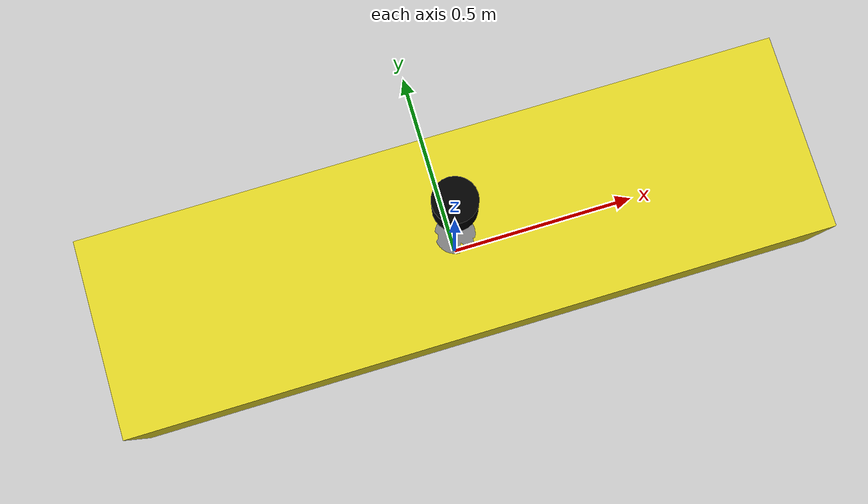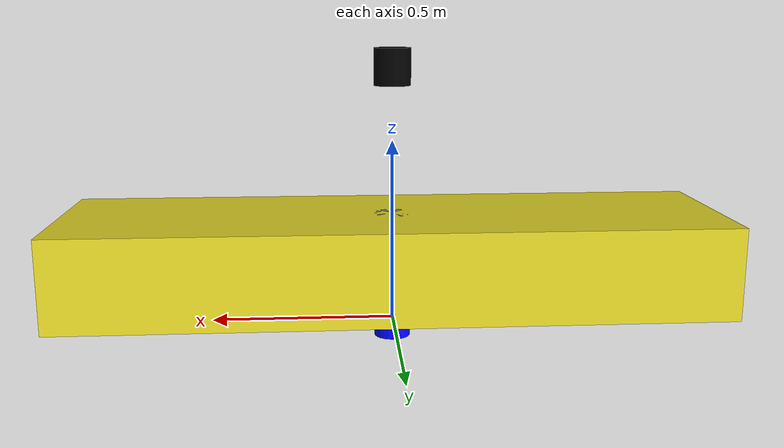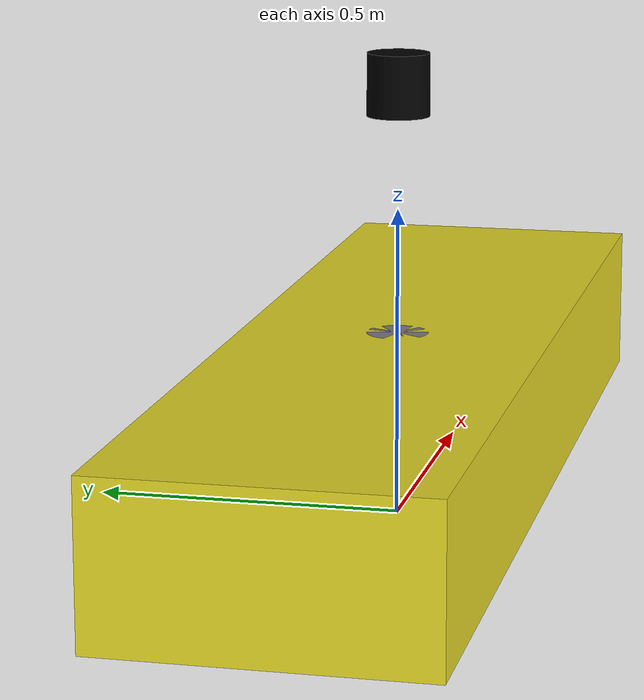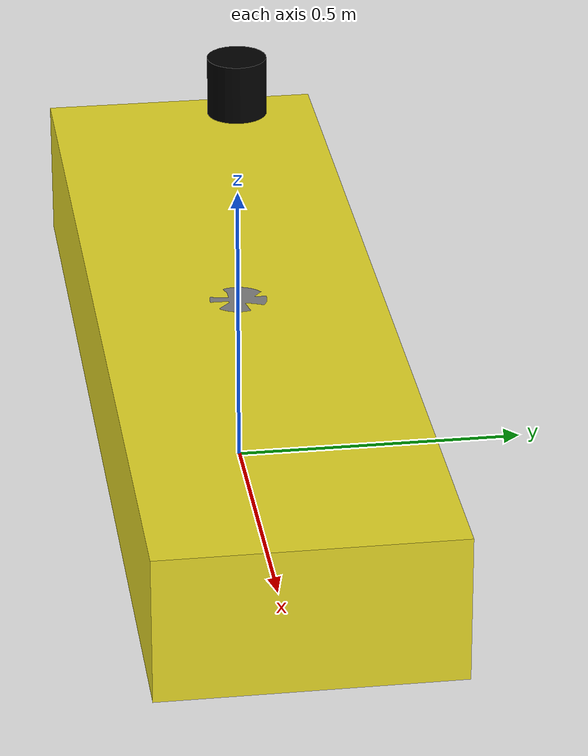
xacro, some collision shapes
<?xml version="1.0"?>
<robot xmlns:xacro="http://ros.org/wiki/xacro" name="myboat">
  <link name="myboat/base_link">
  </link>

  <joint name="myboat/dummy_joint" type="fixed">
    <parent link="myboat/base_link"/>
    <child link="myboat/dummy_link"/>
    <origin xyz="0 0 0.30" rpy="0 0 0"/>
  </joint>

  <link name="myboat/dummy_link">
    <visual>
      <origin xyz="0 0 0" rpy="0 0 0" />
      <geometry>
        <mesh filename="package://myboat_description/meshes/myboat_body.STL"/>
      </geometry>
      <material name="base_material">
        <diffuse>1.0 1.0 1.0</diffuse>
        <specular>1.0 1.0 1.0</specular>
        <pbr>
          <metal>
            <albedo_map>package://myboat_description/models/materials/textures/Boat_Albedo.png</albedo_map>
            <metalness_map>package://myboat_description/models/materials/textures/Boat_Metalness.png</metalness_map>
            <roughness_map>package://myboat_description/models/materials/textures/Boat_Roughness.png</roughness_map>
          </metal>
        </pbr>
        <script>
          <uri>package://myboat_description/models/materials/scripts/</uri>
          <uri>package://myboat_description/models/materials/textures/</uri>
          <name>UrbanTile/Boat_Diffuse</name>
        </script>
      </material>
    </visual>
    <collision name="collision">
      <geometry>
        <box size="1.8 0.5 0.25"/>
      </geometry>
      <origin xyz="0 0 -0.125" rpy="0 0 0"/>
    </collision>
    <inertial>
      <mass value="30.0"/>
      <inertia
        ixx="0.08"
        ixy="0.0"
        ixz="0.0"
        iyy="4.0"
        iyz="0.0"
        izz="4.1" />
    </inertial>
  </link>

  <gazebo reference="myboat/dummy_link">
      <material>Gazebo/Yellow</material>
  </gazebo>

  <link name="zju_link1">
      <visual>
          <origin xyz=" 0 0 0" rpy="0 0 0" />
          <geometry>
              <mesh filename="package://myboat_description/meshes/IMO2-ZJU.STL" scale="1.3 0.8 1.3"/>
          </geometry>
          <material name="whilte" />
      </visual>
  </link>

  <joint name="zju_joint1" type="fixed">
      <origin xyz="0.23 -0.22 -0.13" rpy="0 0 0" />
      <parent link="myboat/dummy_link"/>
      <child link="zju_link1"/>
  </joint>

  <link name="zju_link2">
      <visual>
          <origin xyz=" 0 0 0" rpy="0 0 0" />
          <geometry>
              <mesh filename="package://myboat_description/meshes/IMO2-ZJU.STL" scale="1.3 0.8 1.3"/>
          </geometry>
          <material name="whilte" />
      </visual>
  </link>

  <joint name="zju_joint2" type="fixed">
      <origin xyz="0.23 0.23 -0.13" rpy="0 0 3.14" />
      <parent link="myboat/dummy_link"/>
      <child link="zju_link2"/>
  </joint>

  <gazebo reference="zju_link1">
      <material>Gazebo/Black</material>
  </gazebo>

  <!-- ===================== LIDAR 1 : AU NIVEAU DE L'EAU (WATER) ===================== -->
  <link name="lidar_water_link">
    <visual>
      <origin xyz="0 0 0" rpy="0 0 0" />
      <geometry>
        <cylinder radius="0.05" length="0.1" />
      </geometry>
      <material name="blue">
        <color rgba="0 0 1 1" />
      </material>
    </visual>
  </link>

  <!-- Placé au CENTRE (x=0) pour éviter de scanner l'intérieur du bateau en 360° -->
  <joint name="lidar_water_joint" type="fixed">
    <origin xyz="0.0 0 -0.3" rpy="0 0 0" />
    <parent link="myboat/dummy_link" />
    <child link="lidar_water_link" />
  </joint>

  <gazebo reference="lidar_water_link">
    <sensor type="ray" name="lidar_water_sensor">
      <pose>0 0 0 0 0 0</pose>
      <visualize>true</visualize>
      <update_rate>10</update_rate>
      <ray>
        <scan>
          <horizontal>
            <samples>360</samples> <!-- 360 degrés = 360 rayons -->
            <resolution>1</resolution>
            <min_angle>-3.14159265</min_angle> <!-- -180 degrés -->
            <max_angle>3.14159265</max_angle>  <!-- +180 degrés -->
          </horizontal>
        </scan>
        <range>
          <min>0.8</min> <!-- On ignore tout ce qui est à moins de 80cm pour ne pas voir notre propre coque -->
          <max>30.0</max>
          <resolution>0.01</resolution>
        </range>
      </ray>
      <plugin name="gazebo_ros_lidar_water_controller" filename="libgazebo_ros_laser.so">
        <topicName>/myboat/sensors/lidar/scan_water</topicName>
        <frameName>lidar_water_link</frameName>
      </plugin>
    </sensor>
  </gazebo>

  <!-- ===================== LIDAR 2 : AU NIVEAU DE LA QUILLE (KEEL) ===================== -->
  <link name="lidar_keel_link">
    <visual>
      <origin xyz="0 0 0" rpy="0 0 0" />
      <geometry>
        <cylinder radius="0.05" length="0.1" />
      </geometry>
      <material name="gray">
        <color rgba="0.5 0.5 0.5 1" />
      </material>
    </visual>
  </link>

  <joint name="lidar_keel_joint" type="fixed">
    <origin xyz="0.0 0 -0.05" rpy="0 0 0" />
    <parent link="myboat/dummy_link" />
    <child link="lidar_keel_link" />
  </joint>

  <gazebo reference="lidar_keel_link">
    <sensor type="ray" name="lidar_keel_sensor">
      <pose>0 0 0 0 0 0</pose>
      <visualize>true</visualize>
      <update_rate>10</update_rate>
      <ray>
        <scan>
          <horizontal>
            <samples>360</samples>
            <resolution>1</resolution>
            <min_angle>-3.14159265</min_angle>
            <max_angle>3.14159265</max_angle>
          </horizontal>
        </scan>
        <range>
          <min>0.8</min>
          <max>30.0</max>
          <resolution>0.01</resolution>
        </range>
      </ray>
      <plugin name="gazebo_ros_lidar_keel_controller" filename="libgazebo_ros_laser.so">
        <topicName>/myboat/sensors/lidar/scan_keel</topicName>
        <frameName>lidar_keel_link</frameName>
      </plugin>
    </sensor>
  </gazebo>

  <!-- ===================== LIDAR 3 : AU NIVEAU DU MÂT (MAST) ===================== -->
  <link name="lidar_mast_link">
    <visual>
      <origin xyz="0 0 0" rpy="0 0 0" />
      <geometry>
        <cylinder radius="0.05" length="0.1" />
      </geometry>
      <material name="black">
        <color rgba="0 0 0 1" />
      </material>
    </visual>
  </link>

  <joint name="lidar_mast_joint" type="fixed">
    <origin xyz="0.0 0 0.40" rpy="0 0 0" /> <!-- Remonté un peu pour dégager la coque -->
    <parent link="myboat/dummy_link" />
    <child link="lidar_mast_link" />
  </joint>

  <gazebo reference="lidar_mast_link">
    <sensor type="ray" name="lidar_mast_sensor">
      <pose>0 0 0 0 0 0</pose>
      <visualize>true</visualize>
      <update_rate>10</update_rate>
      <ray>
        <scan>
          <horizontal>
            <samples>360</samples>
            <resolution>1</resolution>
            <min_angle>-3.14159265</min_angle>
            <max_angle>3.14159265</max_angle>
          </horizontal>
        </scan>
        <range>
          <min>0.8</min>
          <max>30.0</max>
          <resolution>0.01</resolution>
        </range>
      </ray>
      <plugin name="gazebo_ros_lidar_mast_controller" filename="libgazebo_ros_laser.so">
        <topicName>/myboat/sensors/lidar/scan_mast</topicName>
        <frameName>lidar_mast_link</frameName>
      </plugin>
    </sensor>
  </gazebo>
</robot>
